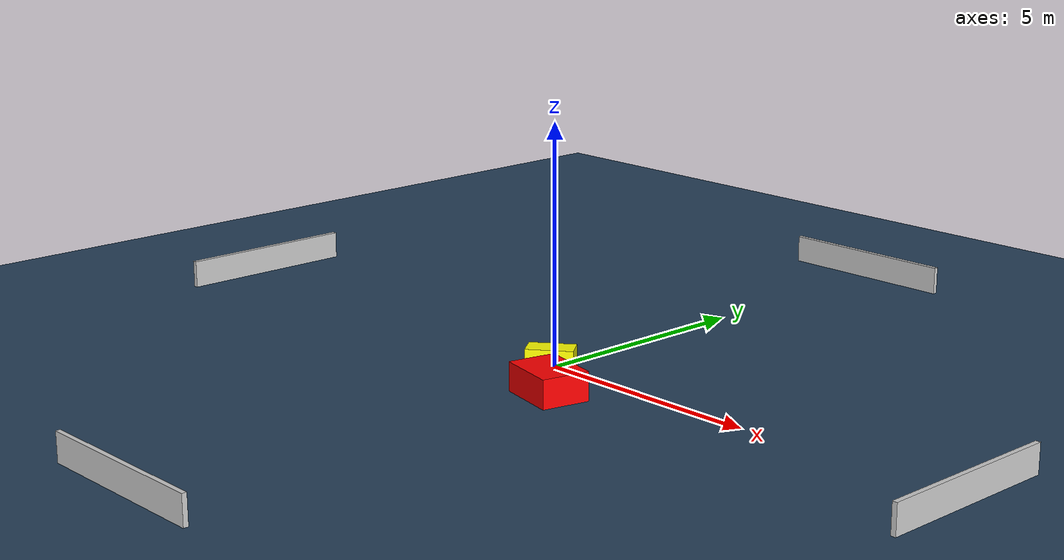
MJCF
<?xml version="1.0" ?>
<mujoco model="generated_environment">
  <option timestep="0.01" integrator="RK4" cone="elliptic"/>
  <default>
    <geom density="1"/>
  </default>
  <asset>
    <texture builtin="gradient" height="3072" name="skybox" rgb1="0.3 0.5 0.7" rgb2="0 0 0" type="skybox" width="512"/>
    <texture builtin="checker" height="300" name="groundplane" rgb1="0.2 0.3 0.4" rgb2="0.1 0.2 0.3" type="2d" width="300"/>
    <material name="groundplane" reflectance="0.2" texrepeat="5 5" texture="groundplane"/>
  </asset>
  <worldbody>
    <light dir="0 0 -1" directional="true" pos="0 0 1.5"/>
    <geom condim="3" friction="0.5 0.005 0.001" material="groundplane" name="floor" pos="0 0 0" size="0 0 0.05" type="plane"/>
    <body name="walls">
      <geom name="wall_1" condim="4" pos="-10.0 0.0 0.3" rgba="0.800000011920929 0.800000011920929 0.800000011920929 1.0" size="0.05 2.0 0.3" type="box"/>
      <geom name="wall_2" condim="4" pos="10.0 0.0 0.3" rgba="0.800000011920929 0.800000011920929 0.800000011920929 1.0" size="0.05 2.0 0.3" type="box"/>
      <geom name="wall_3" condim="4" pos="0.0 -10.0 0.3" rgba="0.800000011920929 0.800000011920929 0.800000011920929 1.0" size="2.0 0.05 0.3" type="box"/>
      <geom name="wall_4" condim="4" pos="0.0 10.0 0.3" rgba="0.800000011920929 0.800000011920929 0.800000011920929 1.0" size="2.0 0.05 0.3" type="box"/>
    </body>
    <body name="robot">
      <joint name="joint_x" type="slide" pos="0 0 0" axis="1 0 0"/>
      <joint name="joint_y" type="slide" pos="0 0 0" axis="0 1 0"/>
      <geom name="robot" type="cylinder" pos="0.0 0.0 0.2" size="0.2 0.2 0.0" mass="5.0" friction="1.0 0.005 0.0001" condim="4" rgba="1.0 1.0 0.0 1.0"/>
    </body>
    <body name="obstacle_1_movable">
      <geom name="obstacle_1_movable" condim="4" pos="0.35334105642531266 -0.4398872749376688 0.3" euler="0 0 37.352790500412944" friction="0.0 0.005 0.001" rgba="1.0 1.0 0.0 1.0" size="0.485772158942848 0.24554648206525428 0.3" type="box" mass="0.1"/>
      <joint type="free"/>
    </body>
    <body name="obstacle_2_static">
      <geom name="obstacle_2_static" condim="4" pos="1.236944400307065 -1.3270525221843406 0.3" euler="0 0 77.44599076408693" friction="0.0 0.005 0.001" rgba="1.0 0.0 0.0 1.0" size="0.5093562243110545 0.6560270609961825 0.3" type="box"/>
    </body>
  </worldbody>
  <actuator>
    <motor name="actuator_x" joint="joint_x" gear="1" ctrlrange="-1 1"/>
    <motor name="actuator_y" joint="joint_y" gear="1" ctrlrange="-1 1"/>
  </actuator>
</mujoco>
